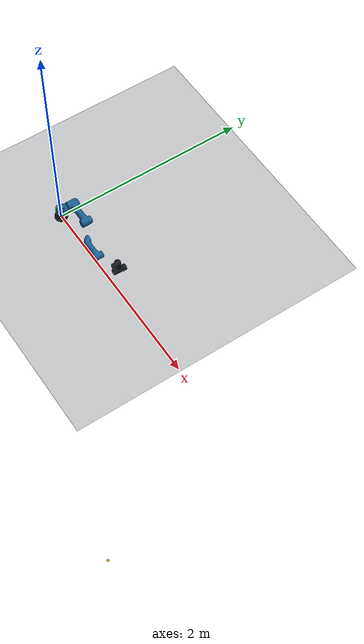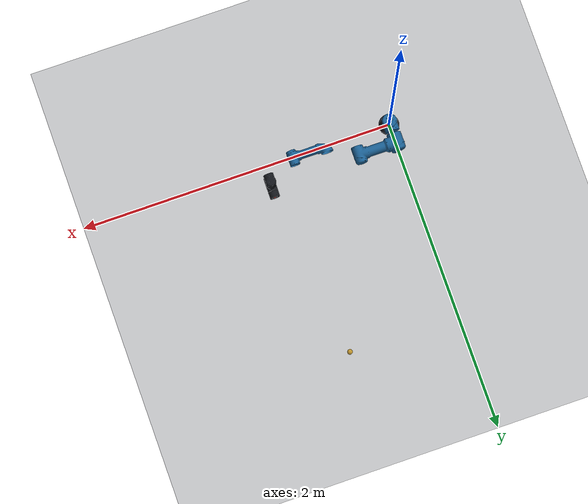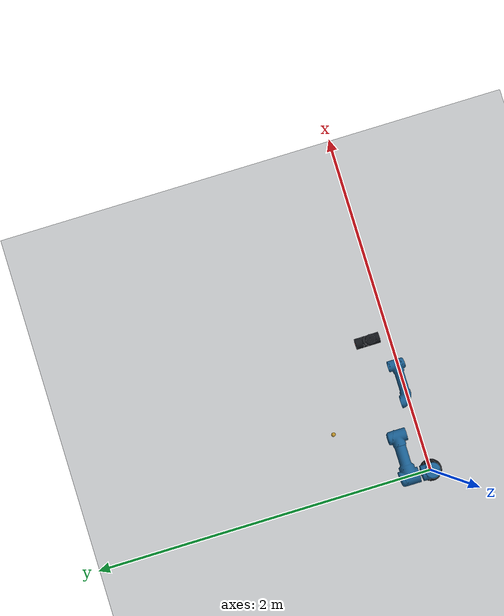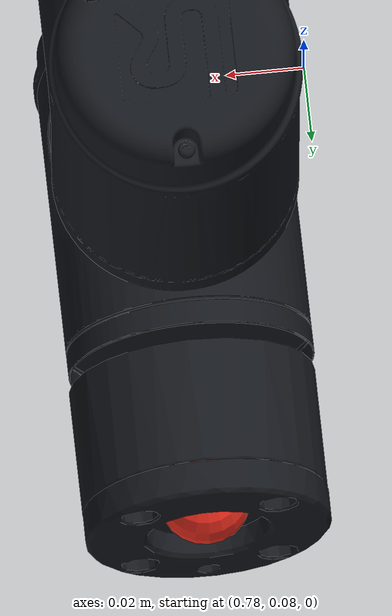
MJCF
<mujoco model="UR5">
  <compiler angle="radian" autolimits="true" meshdir="meshes" balanceinertia="true"/>
  <option timestep="0.002" integrator="implicitfast" gravity="0 0 -9.81" cone="elliptic"/>
  <size njmax="2000" nconmax="400"/>

  <default>
    <joint limited="true" armature="0.01" damping="0.25"/>
    <geom condim="3" friction="1 0.005 0.0001" density="1000"/>
  </default>

  <asset>
    <mesh name="base_mesh" file="base.stl"/>
    <mesh name="shoulder_mesh" file="shoulder.stl"/>
    <mesh name="upperarm_mesh" file="upperarm.stl"/>
    <mesh name="forearm_mesh" file="forearm.stl"/>
    <mesh name="wrist1_mesh" file="wrist1.stl"/>
    <mesh name="wrist2_mesh" file="wrist2.stl"/>
    <mesh name="wrist3_mesh" file="wrist3.stl"/>
    <texture name="floor_grid" type="2d" builtin="checker" width="512" height="512"
             rgb1="0.22 0.24 0.27" rgb2="0.28 0.30 0.33"/>
    <material name="floor_material" texture="floor_grid" texrepeat="5 5" reflectance="0.08"/>
  </asset>

  <worldbody>
    <light name="key_light" pos="1.5 -1.5 2.5" dir="-0.5 0.5 -1" diffuse="0.8 0.8 0.8"/>
    <geom name="floor" type="plane" pos="0 0 -0.04" size="2 2 0.1" material="floor_material"/>

    <!-- Root frame is UR's ROS base_link frame. The fixed pi rotation below
         creates base_link_inertia as in the official robot description. -->
    <body name="base_link">
      <body name="base_link_inertia" quat="0 0 0 1">
        <inertial pos="0 0 0" mass="4.0" diaginertia="0.00443333156 0.00443333156 0.0072"/>
        <geom name="base_visual_collision" type="mesh" mesh="base_mesh" quat="0 0 0 1" rgba="0.08 0.09 0.11 1"/>

        <body name="shoulder_link" pos="0 0 0.089159">
          <joint name="shoulder_pan_joint" type="hinge" axis="0 0 1" range="-6.283185307 6.283185307"/>
          <inertial pos="0 -0.00193 -0.02561" mass="3.7" diaginertia="0.01497235833 0.01497235833 0.01040625"/>
          <geom name="shoulder_visual_collision" type="mesh" mesh="shoulder_mesh" quat="0 0 0 1" rgba="0.10 0.37 0.57 1"/>

          <body name="upper_arm_link" quat="0.707106781 0.707106781 0 0">
            <joint name="shoulder_lift_joint" type="hinge" axis="0 0 1" range="-6.283185307 6.283185307"/>
            <inertial pos="-0.2125 0 0.11336" mass="8.393" diaginertia="0.0151074 0.1338858354 0.1338858354"/>
            <geom name="upper_arm_visual_collision" type="mesh" mesh="upperarm_mesh"
                  pos="0 0 0.13585" quat="0.5 0.5 -0.5 -0.5" rgba="0.10 0.37 0.57 1"/>

            <body name="forearm_link" pos="-0.425 0 0">
              <joint name="elbow_joint" type="hinge" axis="0 0 1" range="-3.141592654 3.141592654"/>
              <inertial pos="-0.24225 0 0.0265" mass="2.33" diaginertia="0.004095 0.03121680352 0.03121680352"/>
              <geom name="forearm_visual_collision" type="mesh" mesh="forearm_mesh"
                    pos="0 0 0.0165" quat="0.5 0.5 -0.5 -0.5" rgba="0.10 0.37 0.57 1"/>

              <body name="wrist_1_link" pos="-0.39225 0 0.10915">
                <joint name="wrist_1_joint" type="hinge" axis="0 0 1" range="-6.283185307 6.283185307"/>
                <inertial pos="0 -0.01634 -0.0018" mass="1.219" diaginertia="0.00201388958 0.00201388958 0.0021942"/>
                <geom name="wrist_1_visual_collision" type="mesh" mesh="wrist1_mesh"
                      pos="0 0 -0.093" quat="0.707106781 0.707106781 0 0" rgba="0.08 0.09 0.11 1"/>

                <body name="wrist_2_link" pos="0 -0.09465 0" quat="0.707106781 0.707106781 0 0">
                  <joint name="wrist_2_joint" type="hinge" axis="0 0 1" range="-6.283185307 6.283185307"/>
                  <inertial pos="0 0.01634 -0.0018" mass="1.219" diaginertia="0.00183103958 0.00183103958 0.0021942"/>
                  <geom name="wrist_2_visual_collision" type="mesh" mesh="wrist2_mesh"
                        pos="0 0 -0.095" rgba="0.08 0.09 0.11 1"/>

                  <body name="wrist_3_link" pos="0 0.0823 0" quat="0.707106781 -0.707106781 0 0">
                    <joint name="wrist_3_joint" type="hinge" axis="0 0 1" range="-6.283185307 6.283185307"/>
                    <inertial pos="0 0 -0.001159" mass="0.1879" diaginertia="0.00008062476 0.00008062476 0.0001321172"/>
                    <geom name="wrist_3_visual_collision" type="mesh" mesh="wrist3_mesh"
                          pos="0 0 -0.0818" quat="0.707106781 0.707106781 0 0" rgba="0.08 0.09 0.11 1"/>
                    <!-- Flange origin is coincident with wrist_3_link in UR's URDF. -->
                    <site name="tcp" pos="0 0 0" quat="0.5 -0.5 -0.5 -0.5" size="0.012" rgba="0.95 0.18 0.12 1"/>
                  </body>
                </body>
              </body>
            </body>
          </body>
        </body>
      </body>
    </body>

    <body name="target_marker" mocap="true" pos="0 0 0.3">
      <geom name="target_marker_geom" type="sphere" size="0.008" rgba="0.2 0.75 0.95 0.85" contype="0" conaffinity="0"/>
    </body>
    <body name="object_marker" mocap="true" pos="0 0 -10">
      <geom name="object_marker_geom" type="sphere" size="0.025" rgba="0.98 0.72 0.12 0.95" contype="0" conaffinity="0"/>
    </body>
  </worldbody>

  <actuator>
    <position name="shoulder_pan_servo" joint="shoulder_pan_joint" kp="100" kv="20" forcelimited="true" forcerange="-150 150" ctrlrange="-6.283185307 6.283185307" ctrllimited="true"/>
    <position name="shoulder_lift_servo" joint="shoulder_lift_joint" kp="100" kv="20" forcelimited="true" forcerange="-150 150" ctrlrange="-6.283185307 6.283185307" ctrllimited="true"/>
    <position name="elbow_servo" joint="elbow_joint" kp="100" kv="20" forcelimited="true" forcerange="-150 150" ctrlrange="-3.141592654 3.141592654" ctrllimited="true"/>
    <position name="wrist_1_servo" joint="wrist_1_joint" kp="60" kv="12" forcelimited="true" forcerange="-28 28" ctrlrange="-6.283185307 6.283185307" ctrllimited="true"/>
    <position name="wrist_2_servo" joint="wrist_2_joint" kp="60" kv="12" forcelimited="true" forcerange="-28 28" ctrlrange="-6.283185307 6.283185307" ctrllimited="true"/>
    <position name="wrist_3_servo" joint="wrist_3_joint" kp="40" kv="8" forcelimited="true" forcerange="-28 28" ctrlrange="-6.283185307 6.283185307" ctrllimited="true"/>
  </actuator>

  <keyframe>
    <key name="home" qpos="-1.811664 -1.407528 1.714162 2.834958 -1.329929 0" ctrl="-1.811664 -1.407528 1.714162 2.834958 -1.329929 0"/>
  </keyframe>
</mujoco>
